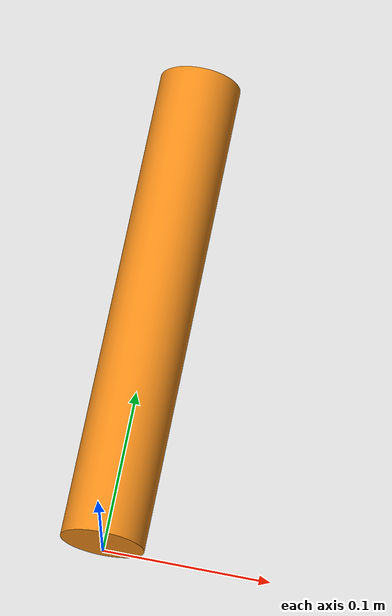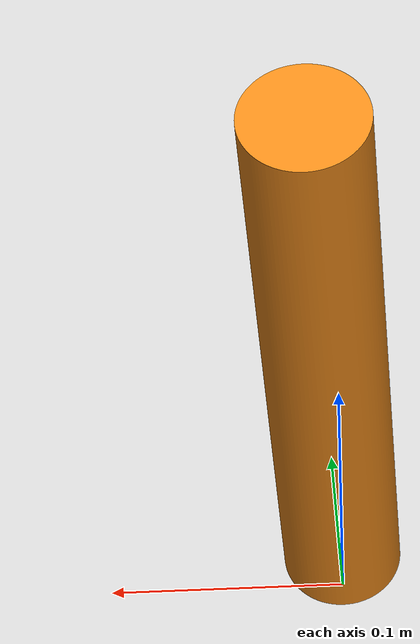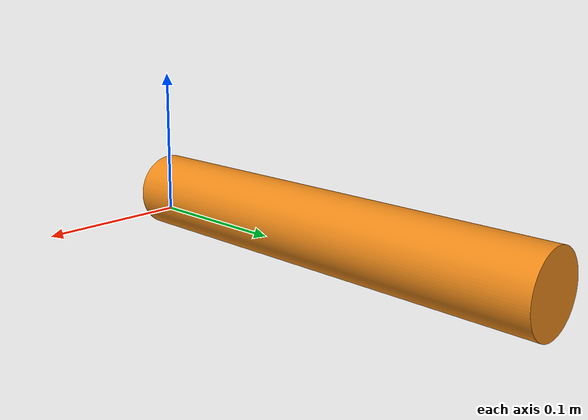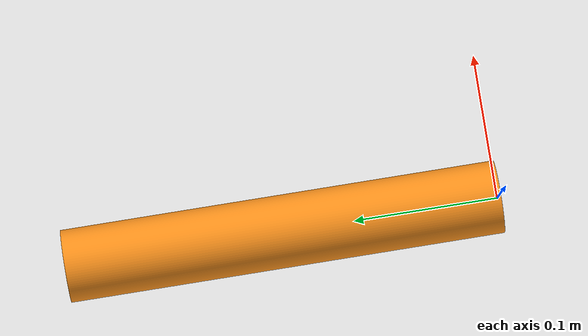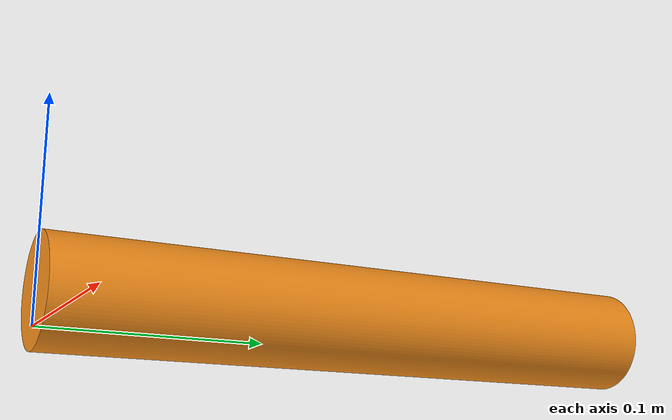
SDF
<?xml version="1.0"?>

<sdf version="1.5">
  <model name='vte_cylinder'>
    <link name='vte_cylinder_root_link'>
      <!-- The origin of the mesh is at approx 0.0932 from the bottom of the bottle -->
      <pose>0 0 0.015 0 0 0</pose>
      <inertial>
	<!-- CoM evaluated using Meshlab assuming a homogeneous body-->
	<!-- expressed w.r.t. the origin of the mesh -->
	<pose>0.0 0.00015 0.0 0 0 0</pose>
        <mass>0.5</mass>
        <inertia>
	  <!-- Obtained from Meshlab -->
          <ixx>0.000005</ixx>
          <ixy>0.0</ixy>
          <ixz>0.0000001</ixz>
          <iyy>0.0</iyy>
          <iyz>0.0</iyz>
          <izz>0.000005</izz>
        </inertia>
      </inertial>
      <collision name='vte_cylinder_collision'>
        <geometry>
          <mesh><uri>model://vte_cylinder/cylinder.stl</uri></mesh>
        </geometry>
	<surface>
          <friction>
            <ode>
              <mu>0.9</mu>
              <mu2>0.9</mu2>
            </ode>
          </friction>
	</surface>
      </collision>
      <visual name='vte_cylinder_visual'>
        <geometry>
          <mesh><uri>model://vte_cylinder/cylinder.dae</uri></mesh>
        </geometry>
        <material>
	  <script>
	    <uri>file://media/materials/scripts/gazebo.material</uri>
	    <name>Gazebo/Orange</name>
	  </script>
        </material>
      </visual>
    </link>
    <plugin name="pose_publisher" filename='libgazebo_yarp_modelposepublisher.so'>
      <period>0.01</period>
    </plugin>
  </model>
</sdf>
